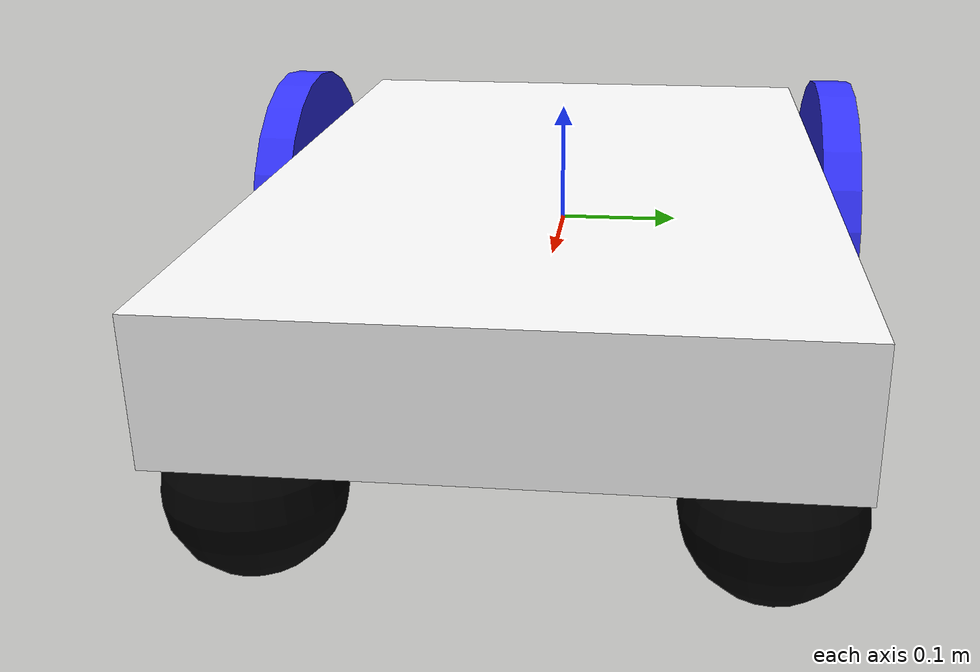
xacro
<?xml version="1.0"?>
<robot xmlns:xacro="http://www.ros.org/wiki/xacro"  name="robot">

    <xacro:include filename="inertial_macros.xacro"/>

    <material name="white" >
        <color rgba="1 1 1 1" />
    </material>

    <material name="orange" >
        <color rgba="1 0.3 0.1 1" />
    </material>

    <material name="black" >
        <color rgba="0 0 0 1" />
    </material>

    <material name="blue" >
        <color rgba="0.2 0.2 1 1" />
    </material>

    <!-- BASE LINK  -->

    <link name="base_link">

    </link>

    <joint name="base_footprint_joint" type="fixed">
        <parent link="base_link"/>
        <child link="base_footprint"/>
    </joint>

    <link name="base_footprint">

    </link>

    <!-- CHASSIS LINK -->

    <joint name="chassis_joint" type="fixed">
        <parent link="base_link"/>
        <child link="chassis"/>
        <origin xyz="-0.22 0 -0.05"/>
    </joint>

    <link name="chassis">
        <visual>
            <origin xyz="0.325 0 .075"/>
            <geometry>
                <box size="0.65 0.43 0.10"/>
            </geometry>
            <material name="white"/>
        </visual>
        <collision>
            <origin xyz="0.325 0 .075"/>
            <geometry>
                <box size="0.65 0.43 0.15"/>
            </geometry>
        </collision>
        <xacro:inertial_box mass="1.5" x="0.65" y="0.43" z="0.15">
            <origin xyz="0.325 0 0.075" rpy="0 0 0"/>
        </xacro:inertial_box>
    </link>

    <!-- WHEELS -->

    <joint name="left_wheel_joint" type="continuous">
        <parent link="base_link"/>
        <child link="left_wheel"/>
        <origin xyz="0 0.215 0" rpy="-${pi/2} 0 0"/>
        <axis xyz="0 0 1"/>
    </joint>

    <link name="left_wheel">
        <visual>
            <origin xyz="0 0 .015"/>
            <geometry>
                <cylinder radius=".125" length=".03"/>
            </geometry>
            <material name="blue"/>
        </visual>
        <collision>
            <origin xyz="0 0 .015"/>
            <geometry>
                <cylinder radius=".125" length=".03"/>
            </geometry>
        </collision>
        <xacro:inertial_cylinder mass="0.5" length="0.03" radius="0.125">
            <origin xyz="0 0 .015" rpy="0 0 0"/>
        </xacro:inertial_cylinder>
    </link>

    <joint name="right_wheel_joint" type="continuous">
        <parent link="base_link"/>
        <child link="right_wheel"/>
        <origin xyz="0 -0.215 0" rpy="${pi/2} 0 0"/>
        <axis xyz="0 0 -1"/>
    </joint>

    <link name="right_wheel">
        <visual>
            <origin xyz="0 0 .015"/>
            <geometry>
                <cylinder radius=".125" length=".03"/>
            </geometry>
            <material name="blue"/>
        </visual>
        <collision>
            <origin xyz="0 0 .015"/>
            <geometry>
                <cylinder radius=".125" length=".03"/>
            </geometry>
        </collision>
        <xacro:inertial_cylinder mass="0.5" length="0.03" radius="0.125">
            <origin xyz="0 0 .015" rpy="0 0 0"/>
        </xacro:inertial_cylinder>
    </link>

    <!-- CASTER WHEELS -->

    <joint name="right_caster_joint" type="fixed">
        <parent link="base_link"/>
        <child link="right_caster"/>
        <origin xyz="0.37 -0.165 -.065"/>
    </joint>

    <link name="right_caster">
        <visual>
            <origin xyz="0 0 0"/>
            <geometry>
                <sphere radius=".06"/>
            </geometry>
            <material name="black"/>
        </visual>
        <collision>
            <geometry>
                <sphere radius=".06"/>
            </geometry>
        </collision>
        <xacro:inertial_sphere mass="0.5" radius="0.06">
            <origin xyz="0 0 0" rpy="0 0 0"/>
        </xacro:inertial_sphere>
    </link>

    <gazebo reference="right_caster">
        <material>Gazebo/White</material>
        <mu1 value="0.001"/>
        <mu2 value="0.001"/>
    </gazebo>

    <joint name="left_caster_joint" type="fixed">
        <parent link="base_link"/>
        <child link="left_caster"/>
        <origin xyz="0.37 0.165 -.065"/>
    </joint>

    <link name="left_caster">
        <visual>
            <origin xyz="0 0 0"/>
            <geometry>
                <sphere radius=".06"/>
            </geometry>
            <material name="black"/>
        </visual>
        <collision>
            <geometry>
                <sphere radius=".06"/>
            </geometry>
        </collision>
        <xacro:inertial_sphere mass="0.5" radius="0.06">
            <origin xyz="0 0 0" rpy="0 0 0"/>
        </xacro:inertial_sphere>
    </link>

    <gazebo reference="left_caster">
        <material>Gazebo/White</material>
        <mu1 value="0.001"/>
        <mu2 value="0.001"/>
    </gazebo>
</robot>
